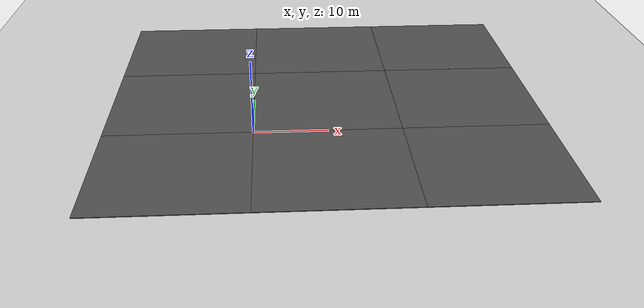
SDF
<sdf version="1.6">
 <world name="default">
  <light name="sun" type="directional">
   <pose>0 0 10 0 -0 0</pose>
   <diffuse>0.8 0.8 0.8 1</diffuse>
   <specular>0.2 0.2 0.2 1</specular>
   <attenuation>
    <range>1000</range>
    <constant>0.9</constant>
    <linear>0.01</linear>
    <quadratic>0.001</quadratic>
   </attenuation>
   <direction>-0.5 0.1 -0.9</direction>
  </light>
  <model name="ground_plane">
   <static>1</static>
   <link name="link">
    <collision name="collision">
     <geometry><plane><normal>0 0 1</normal><size>100 100</size></plane></geometry>
     <surface>
      <contact><collide_bitmask>65535</collide_bitmask></contact>
      <friction><ode><mu>100</mu><mu2>50</mu2></ode></friction>
     </surface>
    </collision>
    <visual name="visual">
     <cast_shadows>0</cast_shadows>
     <geometry><plane><normal>0 0 1</normal><size>100 100</size></plane></geometry>
     <material>
      <script><uri>file://media/materials/scripts/gazebo.material</uri><name>Gazebo/Grey</name></script>
     </material>
    </visual>
   </link>
  </model>
  <gravity>0 0 -9.8</gravity>
  <magnetic_field>6e-06 2.3e-05 -4.2e-05</magnetic_field>
  <atmosphere type="adiabatic"/>
  <physics name="default_physics" default="0" type="ode">
   <max_step_size>0.001</max_step_size>
   <real_time_factor>1</real_time_factor>
   <real_time_update_rate>1000</real_time_update_rate>
  </physics>
  <scene><ambient>0.4 0.4 0.4 1</ambient><background>0.7 0.7 0.7 1</background><shadows>1</shadows></scene>
  <audio><device>default</device></audio>
  <spherical_coordinates>
   <surface_model>EARTH_WGS84</surface_model>
   <latitude_deg>0</latitude_deg>
   <longitude_deg>0</longitude_deg>
   <elevation>0</elevation>
   <heading_deg>0</heading_deg>
  </spherical_coordinates>
  <model name="asphalt_plane">
   <static>1</static>
   <link name="link">
    <collision name="collision"><geometry><box><size>20 20 0.1</size></box></geometry></collision>
    <visual name="visual">
     <cast_shadows>0</cast_shadows>
     <geometry><box><size>20 20 0.1</size></box></geometry>
     <material>
      <script>
       <uri>model://asphalt_plane/materials/scripts</uri>
       <uri>model://asphalt_plane/materials/textures</uri>
       <name>vrc/asphalt</name>
      </script>
     </material>
    </visual>
   </link>
   <pose>-10 10 0 0 -0 0</pose>
  </model>
  <model name="asphalt_plane_0">
   <static>1</static>
   <link name="link">
    <collision name="collision"><geometry><box><size>20 20 0.1</size></box></geometry></collision>
    <visual name="visual">
     <cast_shadows>0</cast_shadows>
     <geometry><box><size>20 20 0.1</size></box></geometry>
     <material>
      <script>
       <uri>model://asphalt_plane/materials/scripts</uri>
       <uri>model://asphalt_plane/materials/textures</uri>
       <name>vrc/asphalt</name>
      </script>
     </material>
    </visual>
   </link>
   <pose>10 10 0 0 -0 0</pose>
  </model>
  <model name="asphalt_plane_1">
   <static>1</static>
   <link name="link">
    <collision name="collision"><geometry><box><size>20 20 0.1</size></box></geometry></collision>
    <visual name="visual">
     <cast_shadows>0</cast_shadows>
     <geometry><box><size>20 20 0.1</size></box></geometry>
     <material>
      <script>
       <uri>model://asphalt_plane/materials/scripts</uri>
       <uri>model://asphalt_plane/materials/textures</uri>
       <name>vrc/asphalt</name>
      </script>
     </material>
    </visual>
   </link>
   <pose>-10 -10 0 0 -0 0</pose>
  </model>
  <model name="asphalt_plane_2">
   <static>1</static>
   <link name="link">
    <collision name="collision"><geometry><box><size>20 20 0.1</size></box></geometry></collision>
    <visual name="visual">
     <cast_shadows>0</cast_shadows>
     <geometry><box><size>20 20 0.1</size></box></geometry>
     <material>
      <script>
       <uri>model://asphalt_plane/materials/scripts</uri>
       <uri>model://asphalt_plane/materials/textures</uri>
       <name>vrc/asphalt</name>
      </script>
     </material>
    </visual>
   </link>
   <pose>10 -10 0 0 -0 0</pose>
  </model>
  <model name="asphalt_plane_3">
   <static>1</static>
   <link name="link">
    <collision name="collision"><geometry><box><size>20 20 0.1</size></box></geometry></collision>
    <visual name="visual">
     <cast_shadows>0</cast_shadows>
     <geometry><box><size>20 20 0.1</size></box></geometry>
     <material>
      <script>
       <uri>model://asphalt_plane/materials/scripts</uri>
       <uri>model://asphalt_plane/materials/textures</uri>
       <name>vrc/asphalt</name>
      </script>
     </material>
    </visual>
   </link>
   <pose>30 10 0 0 -0 0</pose>
  </model>
  <model name="asphalt_plane_4">
   <static>1</static>
   <link name="link">
    <collision name="collision"><geometry><box><size>20 20 0.1</size></box></geometry></collision>
    <visual name="visual">
     <cast_shadows>0</cast_shadows>
     <geometry><box><size>20 20 0.1</size></box></geometry>
     <material>
      <script>
       <uri>model://asphalt_plane/materials/scripts</uri>
       <uri>model://asphalt_plane/materials/textures</uri>
       <name>vrc/asphalt</name>
      </script>
     </material>
    </visual>
   </link>
   <pose>30 -10 0 0 -0 0</pose>
  </model>
  <model name="asphalt_plane_5">
   <static>1</static>
   <link name="link">
    <collision name="collision"><geometry><box><size>20 20 0.1</size></box></geometry></collision>
    <visual name="visual">
     <cast_shadows>0</cast_shadows>
     <geometry><box><size>20 20 0.1</size></box></geometry>
     <material>
      <script>
       <uri>model://asphalt_plane/materials/scripts</uri>
       <uri>model://asphalt_plane/materials/textures</uri>
       <name>vrc/asphalt</name>
      </script>
     </material>
    </visual>
   </link>
   <pose>-10 30 0 0 -0 0</pose>
  </model>
  <model name="asphalt_plane_6">
   <static>1</static>
   <link name="link">
    <collision name="collision"><geometry><box><size>20 20 0.1</size></box></geometry></collision>
    <visual name="visual">
     <cast_shadows>0</cast_shadows>
     <geometry><box><size>20 20 0.1</size></box></geometry>
     <material>
      <script>
       <uri>model://asphalt_plane/materials/scripts</uri>
       <uri>model://asphalt_plane/materials/textures</uri>
       <name>vrc/asphalt</name>
      </script>
     </material>
    </visual>
   </link>
   <pose>30 30 0 0 -0 0</pose>
  </model>
  <model name="asphalt_plane_7">
   <static>1</static>
   <link name="link">
    <collision name="collision"><geometry><box><size>20 20 0.1</size></box></geometry></collision>
    <visual name="visual">
     <cast_shadows>0</cast_shadows>
     <geometry><box><size>20 20 0.1</size></box></geometry>
     <material>
      <script>
       <uri>model://asphalt_plane/materials/scripts</uri>
       <uri>model://asphalt_plane/materials/textures</uri>
       <name>vrc/asphalt</name>
      </script>
     </material>
    </visual>
   </link>
   <pose>10 30 0 0 -0 0</pose>
  </model>
  <model name="wood_cube_10cm">
   <link name="link">
    <pose>0 0 0.05 0 -0 0</pose>
    <inertial>
     <mass>0.5167</mass>
     <inertia>
      <ixx>0.000861167</ixx>
      <ixy>0</ixy>
      <ixz>0</ixz>
      <iyy>0.000861167</iyy>
      <iyz>0</iyz>
      <izz>0.000861167</izz>
     </inertia>
    </inertial>
    <collision name="collision">
     <geometry><box><size>0.1 0.1 0.1</size></box></geometry>
     <surface>
      <contact>
       <poissons_ratio>0.347</poissons_ratio>
       <elastic_modulus>8.8e+09</elastic_modulus>
       <ode><kp>100000</kp><kd>100</kd><max_vel>100</max_vel><min_depth>0.001</min_depth></ode>
      </contact>
      <friction>
       <torsional>
        <coefficient>1</coefficient>
        <use_patch_radius>0</use_patch_radius>
        <surface_radius>0.01</surface_radius>
       </torsional>
      </friction>
     </surface>
    </collision>
    <visual name="visual">
     <geometry><box><size>0.1 0.1 0.1</size></box></geometry>
     <material>
      <script><uri>file://media/materials/scripts/gazebo.material</uri><name>Gazebo/Wood</name></script>
     </material>
    </visual>
   </link>
   <pose>30 20 0.048994 0 -0 0</pose>
  </model>
 </world>
</sdf>
